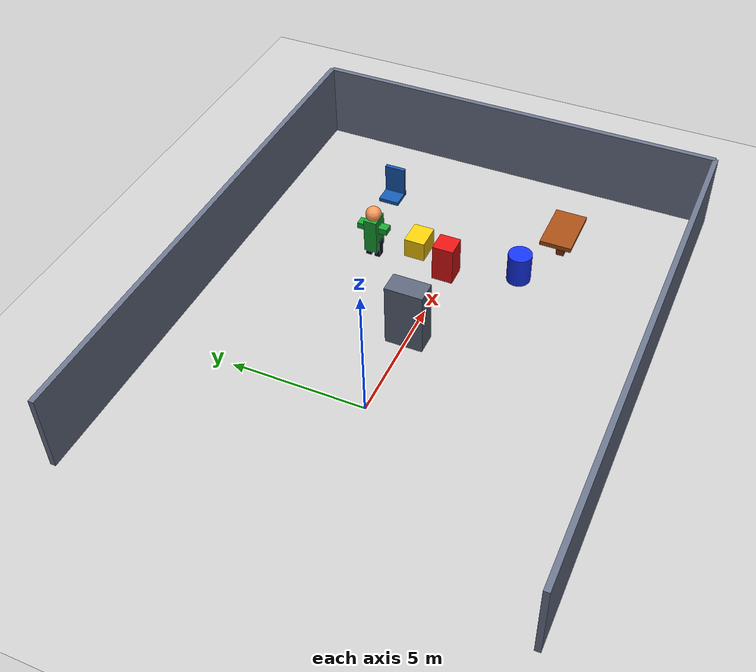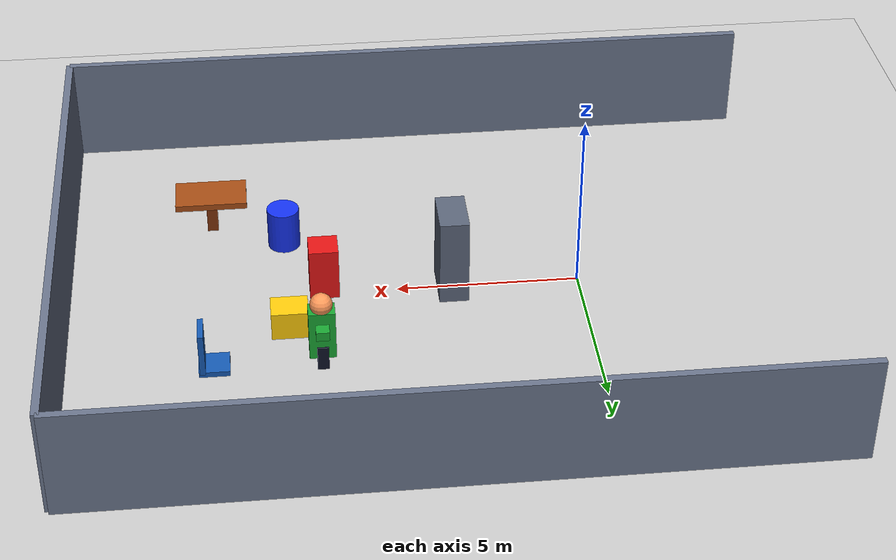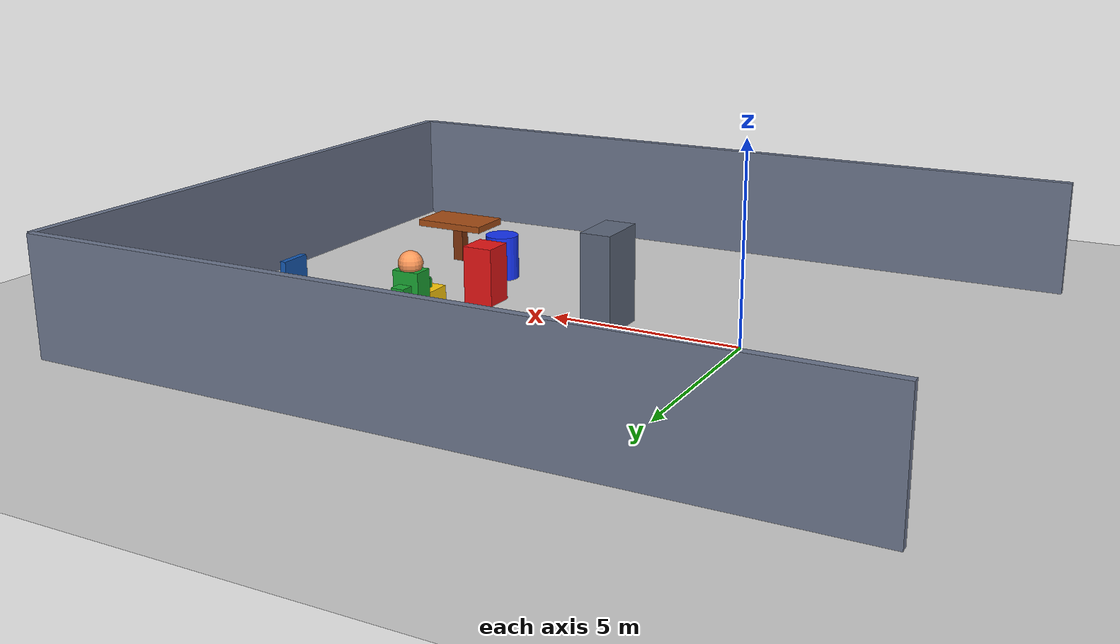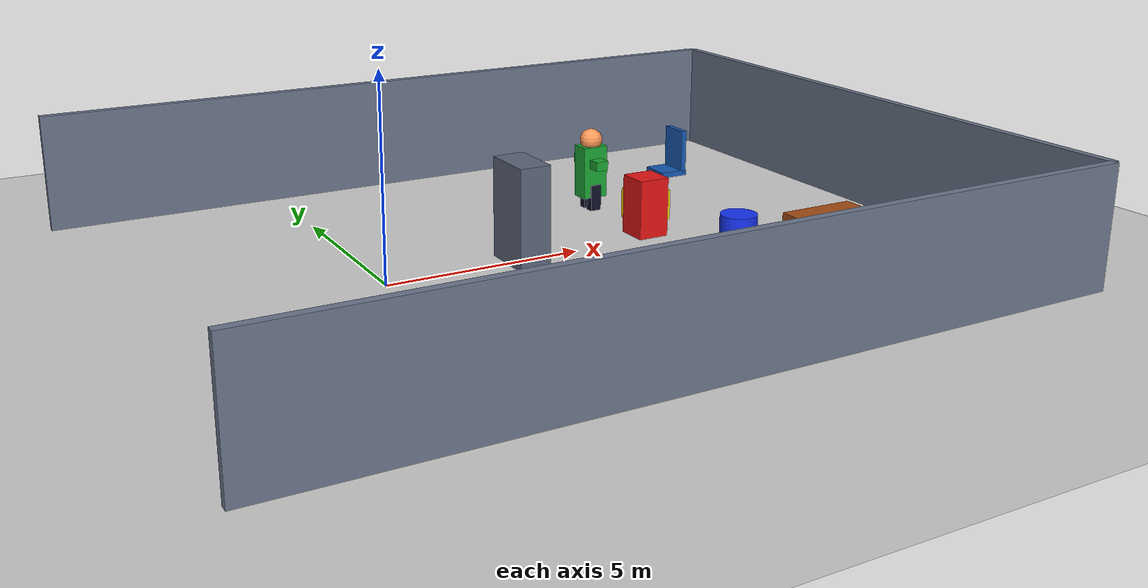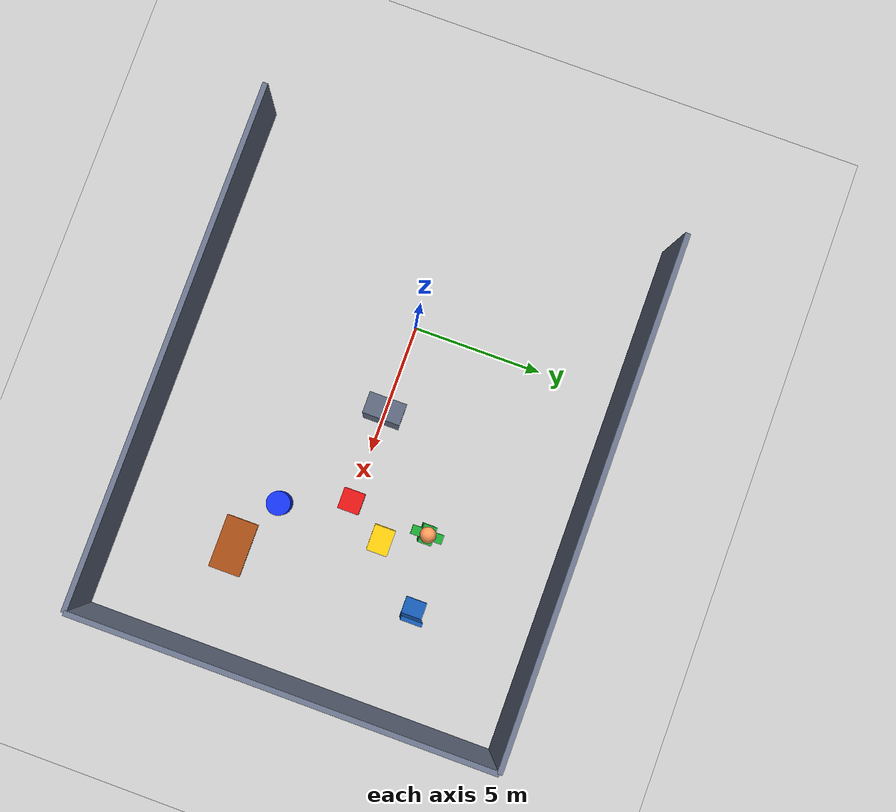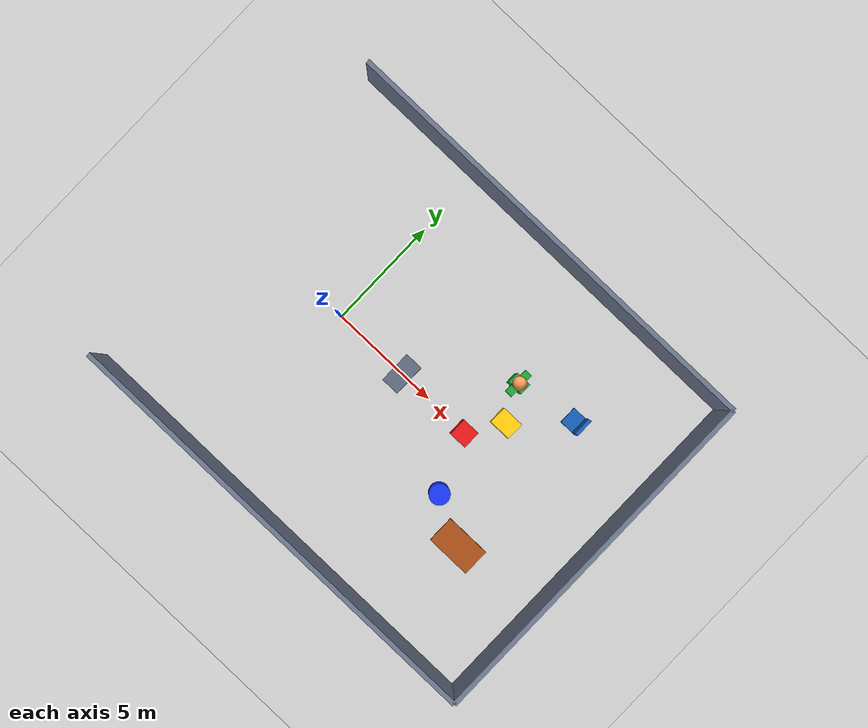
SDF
<?xml version="1.0" encoding="UTF-8"?>
<sdf version="1.9">
  <world name="objects">
    <physics type="ode">
      <max_step_size>0.004</max_step_size>
      <real_time_factor>1.0</real_time_factor>
      <real_time_update_rate>250</real_time_update_rate>
    </physics>
    <gravity>0 0 -9.8</gravity>
    <magnetic_field>6e-06 2.3e-05 -4.2e-05</magnetic_field>
    <atmosphere type="adiabatic"/>
    <scene>
      <grid>false</grid>
      <ambient>0.4 0.4 0.4 1</ambient>
      <background>0.7 0.7 0.7 1</background>
      <shadows>true</shadows>
    </scene>

    <model name="ground_plane">
      <static>true</static>
      <link name="ground">
        <collision name="collision">
          <geometry>
            <plane>
              <normal>0 0 1</normal>
              <size>100 100</size>
            </plane>
          </geometry>
        </collision>
        <visual name="visual">
          <geometry>
            <plane>
              <normal>0 0 1</normal>
              <size>100 100</size>
            </plane>
          </geometry>
          <material>
            <ambient>0.8 0.8 0.8 1</ambient>
            <diffuse>0.8 0.8 0.8 1</diffuse>
          </material>
        </visual>
      </link>
    </model>

    <model name="objects">
      <static>true</static>
      <link name="red_box">
        <pose>7 0 0.9 0 0 0</pose>
        <collision name="collision">
          <geometry>
            <box><size>0.8 0.8 1.5</size></box>
          </geometry>
        </collision>
        <visual name="visual">
          <geometry>
            <box><size>0.8 0.8 1.5</size></box>
          </geometry>
          <material>
            <ambient>0.7 0.05 0.05 1</ambient>
            <diffuse>0.9 0.08 0.08 1</diffuse>
          </material>
        </visual>
      </link>

      <link name="blue_cylinder">
        <pose>8 -2.5 0.6 0 0 0</pose>
        <collision name="collision">
          <geometry>
            <cylinder><radius>0.45</radius><length>1.2</length></cylinder>
          </geometry>
        </collision>
        <visual name="visual">
          <geometry>
            <cylinder><radius>0.45</radius><length>1.2</length></cylinder>
          </geometry>
          <material>
            <ambient>0.05 0.15 0.7 1</ambient>
            <diffuse>0.08 0.2 0.95 1</diffuse>
          </material>
        </visual>
      </link>

      <link name="yellow_box">
        <pose>8 1.5 0.4 0 0 0</pose>
        <collision name="collision">
          <geometry>
            <box><size>1.0 0.8 0.8</size></box>
          </geometry>
        </collision>
        <visual name="visual">
          <geometry>
            <box><size>1.0 0.8 0.8</size></box>
          </geometry>
          <material>
            <ambient>0.8 0.65 0.03 1</ambient>
            <diffuse>1.0 0.8 0.04 1</diffuse>
          </material>
        </visual>
      </link>
    </model>

    <model name="obstacle">
      <static>true</static>
      <pose>3.5 0 1.25 0 0 0</pose>
      <link name="pillar">
        <collision name="collision">
          <geometry>
            <box><size>0.8 1.4 2.5</size></box>
          </geometry>
        </collision>
        <visual name="visual">
          <geometry>
            <box><size>0.8 1.4 2.5</size></box>
          </geometry>
          <material>
            <ambient>0.18 0.2 0.24 1</ambient>
            <diffuse>0.36 0.4 0.48 1</diffuse>
          </material>
        </visual>
      </link>
    </model>

    <model name="room">
      <static>true</static>
      <link name="back_wall">
        <pose>14 0 1.5 0 0 0</pose>
        <collision name="collision">
          <geometry><box><size>0.2 16 3</size></box></geometry>
        </collision>
        <visual name="visual">
          <geometry><box><size>0.2 16 3</size></box></geometry>
          <material>
            <ambient>0.22 0.25 0.3 1</ambient>
            <diffuse>0.42 0.46 0.55 1</diffuse>
          </material>
        </visual>
      </link>
      <link name="left_wall">
        <pose>4 -8 1.5 0 0 0</pose>
        <collision name="collision">
          <geometry><box><size>20 0.2 3</size></box></geometry>
        </collision>
        <visual name="visual">
          <geometry><box><size>20 0.2 3</size></box></geometry>
          <material>
            <ambient>0.22 0.25 0.3 1</ambient>
            <diffuse>0.42 0.46 0.55 1</diffuse>
          </material>
        </visual>
      </link>
      <link name="right_wall">
        <pose>4 8 1.5 0 0 0</pose>
        <collision name="collision">
          <geometry><box><size>20 0.2 3</size></box></geometry>
        </collision>
        <visual name="visual">
          <geometry><box><size>20 0.2 3</size></box></geometry>
          <material>
            <ambient>0.22 0.25 0.3 1</ambient>
            <diffuse>0.42 0.46 0.55 1</diffuse>
          </material>
        </visual>
      </link>
    </model>

    <model name="table">
      <static>true</static>
      <pose>10 -3.5 0 0 0 0</pose>
      <link name="top">
        <pose>0 0 1.1 0 0 0</pose>
        <collision name="collision">
          <geometry><box><size>2.0 1.2 0.18</size></box></geometry>
        </collision>
        <visual name="visual">
          <geometry><box><size>2.0 1.2 0.18</size></box></geometry>
          <material>
            <ambient>0.35 0.16 0.05 1</ambient>
            <diffuse>0.65 0.3 0.08 1</diffuse>
          </material>
        </visual>
      </link>
      <link name="support">
        <pose>0 0 0.55 0 0 0</pose>
        <collision name="collision">
          <geometry><box><size>0.3 0.3 1.1</size></box></geometry>
        </collision>
        <visual name="visual">
          <geometry><box><size>0.3 0.3 1.1</size></box></geometry>
          <material>
            <ambient>0.25 0.1 0.03 1</ambient>
            <diffuse>0.5 0.2 0.05 1</diffuse>
          </material>
        </visual>
      </link>
    </model>

    <model name="chair">
      <static>true</static>
      <pose>10 3.5 0 0 0 0</pose>
      <link name="seat">
        <pose>0 0 0.55 0 0 0</pose>
        <collision name="collision">
          <geometry><box><size>0.8 0.8 0.15</size></box></geometry>
        </collision>
        <visual name="visual">
          <geometry><box><size>0.8 0.8 0.15</size></box></geometry>
          <material>
            <ambient>0.05 0.18 0.35 1</ambient>
            <diffuse>0.08 0.35 0.7 1</diffuse>
          </material>
        </visual>
      </link>
      <link name="back">
        <pose>0.3 0 1.15 0 0 0</pose>
        <collision name="collision">
          <geometry><box><size>0.15 0.8 1.2</size></box></geometry>
        </collision>
        <visual name="visual">
          <geometry><box><size>0.15 0.8 1.2</size></box></geometry>
          <material>
            <ambient>0.05 0.18 0.35 1</ambient>
            <diffuse>0.08 0.35 0.7 1</diffuse>
          </material>
        </visual>
      </link>
    </model>

    <model name="person">
      <static>true</static>
      <pose>7.2 3.0 0 0 0 0</pose>
      <link name="body">
        <collision name="collision">
          <pose>0 0 1 0 0 0</pose>
          <geometry>
            <box><size>0.7 0.5 2.0</size></box>
          </geometry>
        </collision>
        <visual name="torso">
          <pose>0 0 1.05 0 0 0</pose>
          <geometry>
            <box><size>0.7 0.5 1.4</size></box>
          </geometry>
          <material>
            <ambient>0.08 0.4 0.14 1</ambient>
            <diffuse>0.1 0.65 0.2 1</diffuse>
          </material>
        </visual>
        <visual name="left_arm">
          <pose>0 -0.42 1.3 0 0 0</pose>
          <geometry>
            <box><size>0.35 0.35 0.25</size></box>
          </geometry>
          <material>
            <ambient>0.08 0.4 0.14 1</ambient>
            <diffuse>0.1 0.65 0.2 1</diffuse>
          </material>
        </visual>
        <visual name="right_arm">
          <pose>0 0.42 1.3 0 0 0</pose>
          <geometry>
            <box><size>0.35 0.35 0.25</size></box>
          </geometry>
          <material>
            <ambient>0.08 0.4 0.14 1</ambient>
            <diffuse>0.1 0.65 0.2 1</diffuse>
          </material>
        </visual>
        <visual name="left_leg">
          <pose>0 -0.17 0.35 0 0 0</pose>
          <geometry>
            <box><size>0.3 0.22 0.7</size></box>
          </geometry>
          <material>
            <ambient>0.03 0.04 0.08 1</ambient>
            <diffuse>0.05 0.07 0.15 1</diffuse>
          </material>
        </visual>
        <visual name="right_leg">
          <pose>0 0.17 0.35 0 0 0</pose>
          <geometry>
            <box><size>0.3 0.22 0.7</size></box>
          </geometry>
          <material>
            <ambient>0.03 0.04 0.08 1</ambient>
            <diffuse>0.05 0.07 0.15 1</diffuse>
          </material>
        </visual>
        <visual name="head">
          <pose>0 0 1.9 0 0 0</pose>
          <geometry>
            <sphere><radius>0.3</radius></sphere>
          </geometry>
          <material>
            <ambient>0.8 0.45 0.25 1</ambient>
            <diffuse>1.0 0.6 0.35 1</diffuse>
          </material>
        </visual>
      </link>
    </model>

    <light name="sun" type="directional">
      <pose>0 0 500 0 0 0</pose>
      <cast_shadows>true</cast_shadows>
      <intensity>1</intensity>
      <direction>0.1 0.6 -0.8</direction>
    </light>

    <spherical_coordinates>
      <surface_model>EARTH_WGS84</surface_model>
      <world_frame_orientation>ENU</world_frame_orientation>
      <latitude_deg>47.3979710577</latitude_deg>
      <longitude_deg>8.5461637398</longitude_deg>
      <elevation>0</elevation>
    </spherical_coordinates>
  </world>
</sdf>
